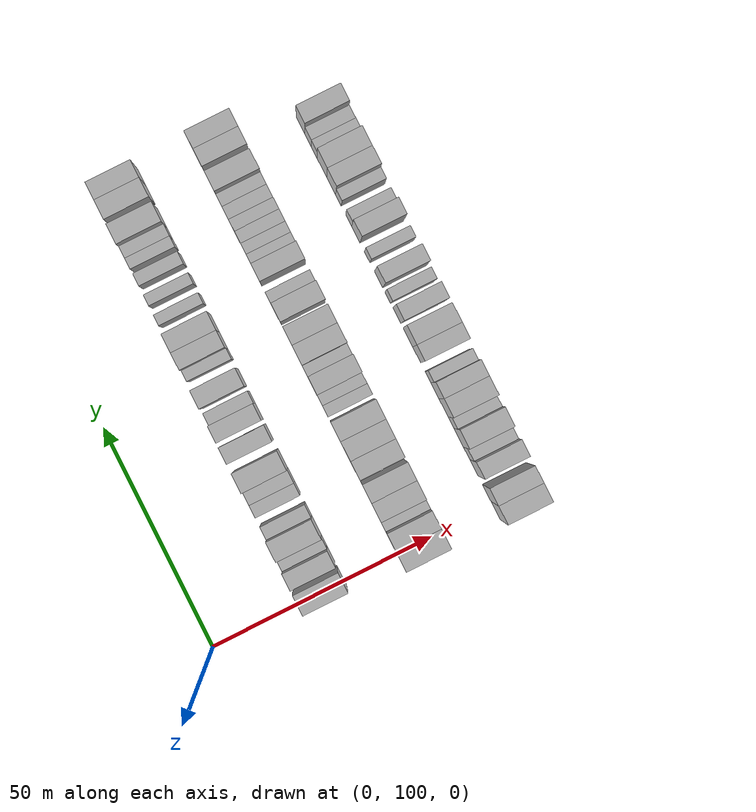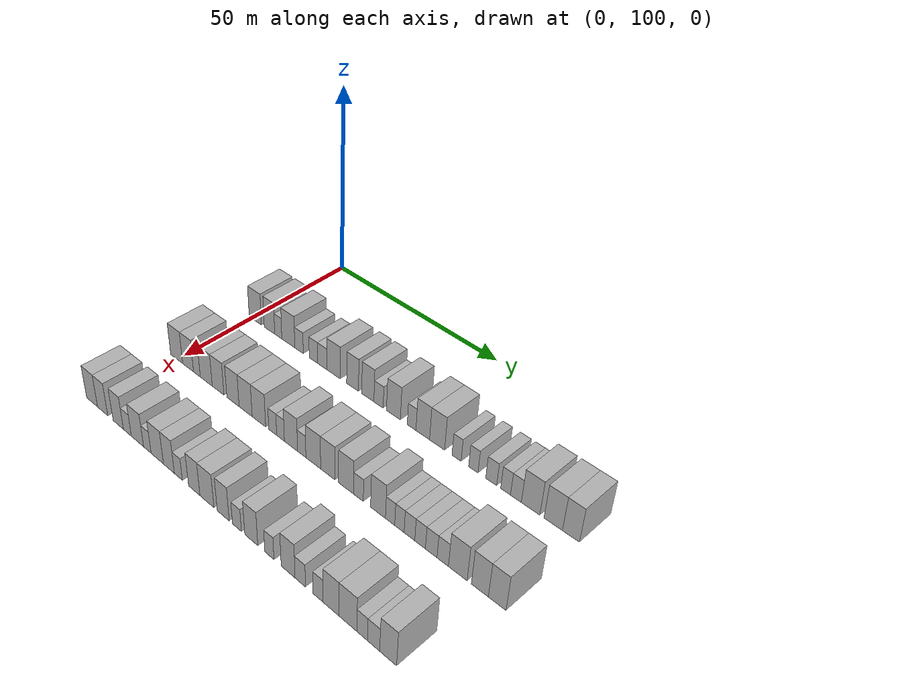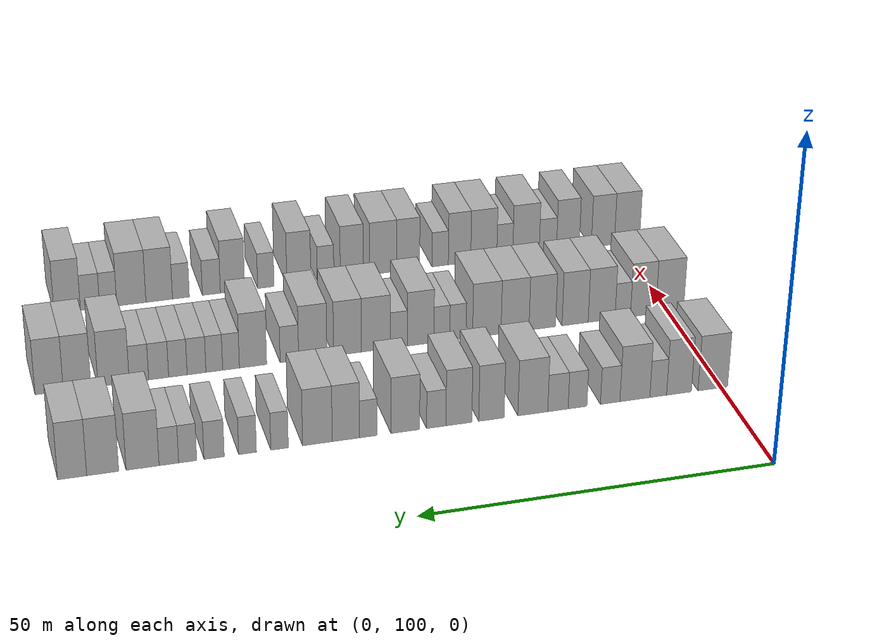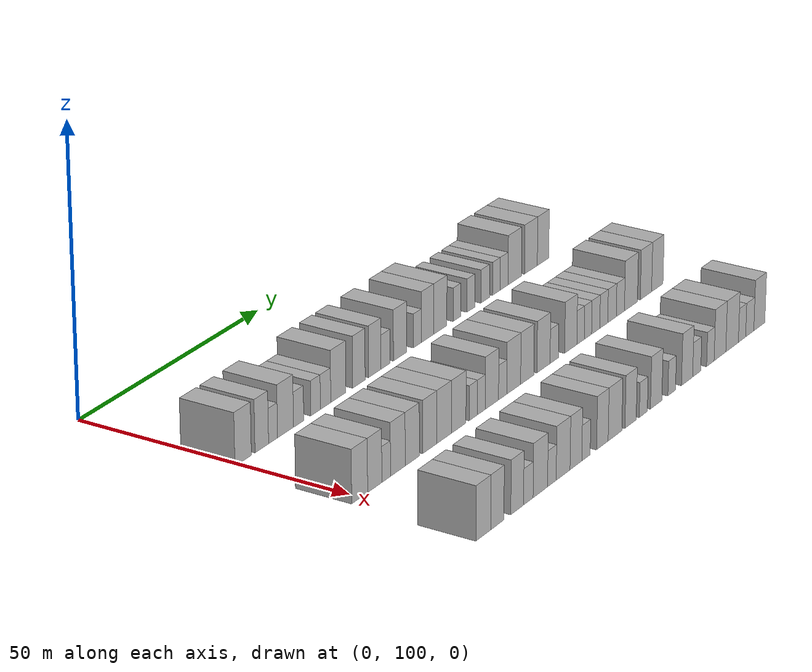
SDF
<sdf version="1.6">
 <world name="default">
  <model name="building_112">
   <static>1</static>
   <pose>25.0000 101.2438 0 0.000000 0.000000 0.000000</pose>
   <link name="link">
    <pose>0 0 4.50 0 0 0</pose>
    <collision name="collision"><geometry><box><size>10.0000 4.4617 9.0000</size></box></geometry></collision>
    <visual name="visual">
     <cast_shadows>0</cast_shadows>
     <geometry><box><size>10.0000 4.4617 9.0000</size></box></geometry>
     <material>
      <script>
       <uri>model://HANNAS_wall/materials/scripts</uri>
       <uri>model://HANNAS_wall/materials/textures</uri>
       <name>vrc/HANNAS_wall</name>
      </script>
     </material>
    </visual>
   </link>
  </model>
  <model name="building_113">
   <static>1</static>
   <pose>25.0000 106.3369 0 0.000000 0.000000 0.000000</pose>
   <link name="link">
    <pose>0 0 4.50 0 0 0</pose>
    <collision name="collision"><geometry><box><size>10.0000 3.7246 9.0000</size></box></geometry></collision>
    <visual name="visual">
     <cast_shadows>0</cast_shadows>
     <geometry><box><size>10.0000 3.7246 9.0000</size></box></geometry>
     <material>
      <script>
       <uri>model://HANNAS_wall/materials/scripts</uri>
       <uri>model://HANNAS_wall/materials/textures</uri>
       <name>vrc/HANNAS_wall</name>
      </script>
     </material>
    </visual>
   </link>
  </model>
  <model name="building_114">
   <static>1</static>
   <pose>25.0000 109.4494 0 0.000000 0.000000 0.000000</pose>
   <link name="link">
    <pose>0 0 3.00 0 0 0</pose>
    <collision name="collision"><geometry><box><size>10.0000 2.5003 6.0000</size></box></geometry></collision>
    <visual name="visual">
     <cast_shadows>0</cast_shadows>
     <geometry><box><size>10.0000 2.5003 6.0000</size></box></geometry>
     <material>
      <script>
       <uri>model://HANNAS_wall/materials/scripts</uri>
       <uri>model://HANNAS_wall/materials/textures</uri>
       <name>vrc/HANNAS_wall</name>
      </script>
     </material>
    </visual>
   </link>
  </model>
  <model name="building_115">
   <static>1</static>
   <pose>25.0000 112.9285 0 0.000000 0.000000 0.000000</pose>
   <link name="link">
    <pose>0 0 4.50 0 0 0</pose>
    <collision name="collision"><geometry><box><size>10.0000 4.4580 9.0000</size></box></geometry></collision>
    <visual name="visual">
     <cast_shadows>0</cast_shadows>
     <geometry><box><size>10.0000 4.4580 9.0000</size></box></geometry>
     <material>
      <script>
       <uri>model://HANNAS_wall/materials/scripts</uri>
       <uri>model://HANNAS_wall/materials/textures</uri>
       <name>vrc/HANNAS_wall</name>
      </script>
     </material>
    </visual>
   </link>
  </model>
  <model name="building_116">
   <static>1</static>
   <pose>25.0000 116.6001 0 0.000000 0.000000 0.000000</pose>
   <link name="link">
    <pose>0 0 3.00 0 0 0</pose>
    <collision name="collision"><geometry><box><size>10.0000 2.8852 6.0000</size></box></geometry></collision>
    <visual name="visual">
     <cast_shadows>0</cast_shadows>
     <geometry><box><size>10.0000 2.8852 6.0000</size></box></geometry>
     <material>
      <script>
       <uri>model://HANNAS_wall/materials/scripts</uri>
       <uri>model://HANNAS_wall/materials/textures</uri>
       <name>vrc/HANNAS_wall</name>
      </script>
     </material>
    </visual>
   </link>
  </model>
  <model name="building_117">
   <static>1</static>
   <pose>25.0000 121.4261 0 0.000000 0.000000 0.000000</pose>
   <link name="link">
    <pose>0 0 3.00 0 0 0</pose>
    <collision name="collision"><geometry><box><size>10.0000 2.7669 6.0000</size></box></geometry></collision>
    <visual name="visual">
     <cast_shadows>0</cast_shadows>
     <geometry><box><size>10.0000 2.7669 6.0000</size></box></geometry>
     <material>
      <script>
       <uri>model://HANNAS_wall/materials/scripts</uri>
       <uri>model://HANNAS_wall/materials/textures</uri>
       <name>vrc/HANNAS_wall</name>
      </script>
     </material>
    </visual>
   </link>
  </model>
  <model name="building_118">
   <static>1</static>
   <pose>25.0000 124.3057 0 0.000000 0.000000 0.000000</pose>
   <link name="link">
    <pose>0 0 3.00 0 0 0</pose>
    <collision name="collision"><geometry><box><size>10.0000 2.9923 6.0000</size></box></geometry></collision>
    <visual name="visual">
     <cast_shadows>0</cast_shadows>
     <geometry><box><size>10.0000 2.9923 6.0000</size></box></geometry>
     <material>
      <script>
       <uri>model://HANNAS_wall/materials/scripts</uri>
       <uri>model://HANNAS_wall/materials/textures</uri>
       <name>vrc/HANNAS_wall</name>
      </script>
     </material>
    </visual>
   </link>
  </model>
  <model name="building_119">
   <static>1</static>
   <pose>25.0000 127.9887 0 0.000000 0.000000 0.000000</pose>
   <link name="link">
    <pose>0 0 4.50 0 0 0</pose>
    <collision name="collision"><geometry><box><size>10.0000 4.3738 9.0000</size></box></geometry></collision>
    <visual name="visual">
     <cast_shadows>0</cast_shadows>
     <geometry><box><size>10.0000 4.3738 9.0000</size></box></geometry>
     <material>
      <script>
       <uri>model://HANNAS_wall/materials/scripts</uri>
       <uri>model://HANNAS_wall/materials/textures</uri>
       <name>vrc/HANNAS_wall</name>
      </script>
     </material>
    </visual>
   </link>
  </model>
  <model name="building_120">
   <static>1</static>
   <pose>25.0000 134.0198 0 0.000000 0.000000 0.000000</pose>
   <link name="link">
    <pose>0 0 4.50 0 0 0</pose>
    <collision name="collision"><geometry><box><size>10.0000 3.6884 9.0000</size></box></geometry></collision>
    <visual name="visual">
     <cast_shadows>0</cast_shadows>
     <geometry><box><size>10.0000 3.6884 9.0000</size></box></geometry>
     <material>
      <script>
       <uri>model://HANNAS_wall/materials/scripts</uri>
       <uri>model://HANNAS_wall/materials/textures</uri>
       <name>vrc/HANNAS_wall</name>
      </script>
     </material>
    </visual>
   </link>
  </model>
  <model name="building_121">
   <static>1</static>
   <pose>25.0000 138.7306 0 0.000000 0.000000 0.000000</pose>
   <link name="link">
    <pose>0 0 4.50 0 0 0</pose>
    <collision name="collision"><geometry><box><size>10.0000 3.7332 9.0000</size></box></geometry></collision>
    <visual name="visual">
     <cast_shadows>0</cast_shadows>
     <geometry><box><size>10.0000 3.7332 9.0000</size></box></geometry>
     <material>
      <script>
       <uri>model://HANNAS_wall/materials/scripts</uri>
       <uri>model://HANNAS_wall/materials/textures</uri>
       <name>vrc/HANNAS_wall</name>
      </script>
     </material>
    </visual>
   </link>
  </model>
  <model name="building_122">
   <static>1</static>
   <pose>25.0000 141.9809 0 0.000000 0.000000 0.000000</pose>
   <link name="link">
    <pose>0 0 3.00 0 0 0</pose>
    <collision name="collision"><geometry><box><size>10.0000 2.7674 6.0000</size></box></geometry></collision>
    <visual name="visual">
     <cast_shadows>0</cast_shadows>
     <geometry><box><size>10.0000 2.7674 6.0000</size></box></geometry>
     <material>
      <script>
       <uri>model://HANNAS_wall/materials/scripts</uri>
       <uri>model://HANNAS_wall/materials/textures</uri>
       <name>vrc/HANNAS_wall</name>
      </script>
     </material>
    </visual>
   </link>
  </model>
  <model name="building_123">
   <static>1</static>
   <pose>25.0000 146.4048 0 0.000000 0.000000 0.000000</pose>
   <link name="link">
    <pose>0 0 4.50 0 0 0</pose>
    <collision name="collision"><geometry><box><size>10.0000 4.0803 9.0000</size></box></geometry></collision>
    <visual name="visual">
     <cast_shadows>0</cast_shadows>
     <geometry><box><size>10.0000 4.0803 9.0000</size></box></geometry>
     <material>
      <script>
       <uri>model://HANNAS_wall/materials/scripts</uri>
       <uri>model://HANNAS_wall/materials/textures</uri>
       <name>vrc/HANNAS_wall</name>
      </script>
     </material>
    </visual>
   </link>
  </model>
  <model name="building_124">
   <static>1</static>
   <pose>25.0000 151.6809 0 0.000000 0.000000 0.000000</pose>
   <link name="link">
    <pose>0 0 3.00 0 0 0</pose>
    <collision name="collision"><geometry><box><size>10.0000 2.4719 6.0000</size></box></geometry></collision>
    <visual name="visual">
     <cast_shadows>0</cast_shadows>
     <geometry><box><size>10.0000 2.4719 6.0000</size></box></geometry>
     <material>
      <script>
       <uri>model://HANNAS_wall/materials/scripts</uri>
       <uri>model://HANNAS_wall/materials/textures</uri>
       <name>vrc/HANNAS_wall</name>
      </script>
     </material>
    </visual>
   </link>
  </model>
  <model name="building_125">
   <static>1</static>
   <pose>25.0000 154.8383 0 0.000000 0.000000 0.000000</pose>
   <link name="link">
    <pose>0 0 4.50 0 0 0</pose>
    <collision name="collision"><geometry><box><size>10.0000 3.8428 9.0000</size></box></geometry></collision>
    <visual name="visual">
     <cast_shadows>0</cast_shadows>
     <geometry><box><size>10.0000 3.8428 9.0000</size></box></geometry>
     <material>
      <script>
       <uri>model://HANNAS_wall/materials/scripts</uri>
       <uri>model://HANNAS_wall/materials/textures</uri>
       <name>vrc/HANNAS_wall</name>
      </script>
     </material>
    </visual>
   </link>
  </model>
  <model name="building_126">
   <static>1</static>
   <pose>25.0000 158.8395 0 0.000000 0.000000 0.000000</pose>
   <link name="link">
    <pose>0 0 4.50 0 0 0</pose>
    <collision name="collision"><geometry><box><size>10.0000 4.1596 9.0000</size></box></geometry></collision>
    <visual name="visual">
     <cast_shadows>0</cast_shadows>
     <geometry><box><size>10.0000 4.1596 9.0000</size></box></geometry>
     <material>
      <script>
       <uri>model://HANNAS_wall/materials/scripts</uri>
       <uri>model://HANNAS_wall/materials/textures</uri>
       <name>vrc/HANNAS_wall</name>
      </script>
     </material>
    </visual>
   </link>
  </model>
  <model name="building_127">
   <static>1</static>
   <pose>25.0000 164.1392 0 0.000000 0.000000 0.000000</pose>
   <link name="link">
    <pose>0 0 3.00 0 0 0</pose>
    <collision name="collision"><geometry><box><size>10.0000 2.4399 6.0000</size></box></geometry></collision>
    <visual name="visual">
     <cast_shadows>0</cast_shadows>
     <geometry><box><size>10.0000 2.4399 6.0000</size></box></geometry>
     <material>
      <script>
       <uri>model://HANNAS_wall/materials/scripts</uri>
       <uri>model://HANNAS_wall/materials/textures</uri>
       <name>vrc/HANNAS_wall</name>
      </script>
     </material>
    </visual>
   </link>
  </model>
  <model name="building_128">
   <static>1</static>
   <pose>25.0000 168.5877 0 0.000000 0.000000 0.000000</pose>
   <link name="link">
    <pose>0 0 3.00 0 0 0</pose>
    <collision name="collision"><geometry><box><size>10.0000 2.4570 6.0000</size></box></geometry></collision>
    <visual name="visual">
     <cast_shadows>0</cast_shadows>
     <geometry><box><size>10.0000 2.4570 6.0000</size></box></geometry>
     <material>
      <script>
       <uri>model://HANNAS_wall/materials/scripts</uri>
       <uri>model://HANNAS_wall/materials/textures</uri>
       <name>vrc/HANNAS_wall</name>
      </script>
     </material>
    </visual>
   </link>
  </model>
  <model name="building_129">
   <static>1</static>
   <pose>25.0000 173.2127 0 0.000000 0.000000 0.000000</pose>
   <link name="link">
    <pose>0 0 3.00 0 0 0</pose>
    <collision name="collision"><geometry><box><size>10.0000 2.7931 6.0000</size></box></geometry></collision>
    <visual name="visual">
     <cast_shadows>0</cast_shadows>
     <geometry><box><size>10.0000 2.7931 6.0000</size></box></geometry>
     <material>
      <script>
       <uri>model://HANNAS_wall/materials/scripts</uri>
       <uri>model://HANNAS_wall/materials/textures</uri>
       <name>vrc/HANNAS_wall</name>
      </script>
     </material>
    </visual>
   </link>
  </model>
  <model name="building_130">
   <static>1</static>
   <pose>25.0000 176.8477 0 0.000000 0.000000 0.000000</pose>
   <link name="link">
    <pose>0 0 3.00 0 0 0</pose>
    <collision name="collision"><geometry><box><size>10.0000 2.4770 6.0000</size></box></geometry></collision>
    <visual name="visual">
     <cast_shadows>0</cast_shadows>
     <geometry><box><size>10.0000 2.4770 6.0000</size></box></geometry>
     <material>
      <script>
       <uri>model://HANNAS_wall/materials/scripts</uri>
       <uri>model://HANNAS_wall/materials/textures</uri>
       <name>vrc/HANNAS_wall</name>
      </script>
     </material>
    </visual>
   </link>
  </model>
  <model name="building_131">
   <static>1</static>
   <pose>25.0000 179.4247 0 0.000000 0.000000 0.000000</pose>
   <link name="link">
    <pose>0 0 3.00 0 0 0</pose>
    <collision name="collision"><geometry><box><size>10.0000 2.6770 6.0000</size></box></geometry></collision>
    <visual name="visual">
     <cast_shadows>0</cast_shadows>
     <geometry><box><size>10.0000 2.6770 6.0000</size></box></geometry>
     <material>
      <script>
       <uri>model://HANNAS_wall/materials/scripts</uri>
       <uri>model://HANNAS_wall/materials/textures</uri>
       <name>vrc/HANNAS_wall</name>
      </script>
     </material>
    </visual>
   </link>
  </model>
  <model name="building_132">
   <static>1</static>
   <pose>25.0000 183.0065 0 0.000000 0.000000 0.000000</pose>
   <link name="link">
    <pose>0 0 4.50 0 0 0</pose>
    <collision name="collision"><geometry><box><size>10.0000 4.4866 9.0000</size></box></geometry></collision>
    <visual name="visual">
     <cast_shadows>0</cast_shadows>
     <geometry><box><size>10.0000 4.4866 9.0000</size></box></geometry>
     <material>
      <script>
       <uri>model://HANNAS_wall/materials/scripts</uri>
       <uri>model://HANNAS_wall/materials/textures</uri>
       <name>vrc/HANNAS_wall</name>
      </script>
     </material>
    </visual>
   </link>
  </model>
  <model name="building_133">
   <static>1</static>
   <pose>25.0000 188.4119 0 0.000000 0.000000 0.000000</pose>
   <link name="link">
    <pose>0 0 4.50 0 0 0</pose>
    <collision name="collision"><geometry><box><size>10.0000 4.3243 9.0000</size></box></geometry></collision>
    <visual name="visual">
     <cast_shadows>0</cast_shadows>
     <geometry><box><size>10.0000 4.3243 9.0000</size></box></geometry>
     <material>
      <script>
       <uri>model://HANNAS_wall/materials/scripts</uri>
       <uri>model://HANNAS_wall/materials/textures</uri>
       <name>vrc/HANNAS_wall</name>
      </script>
     </material>
    </visual>
   </link>
  </model>
  <model name="building_134">
   <static>1</static>
   <pose>25.0000 192.5333 0 0.000000 0.000000 0.000000</pose>
   <link name="link">
    <pose>0 0 4.50 0 0 0</pose>
    <collision name="collision"><geometry><box><size>10.0000 3.9184 9.0000</size></box></geometry></collision>
    <visual name="visual">
     <cast_shadows>0</cast_shadows>
     <geometry><box><size>10.0000 3.9184 9.0000</size></box></geometry>
     <material>
      <script>
       <uri>model://HANNAS_wall/materials/scripts</uri>
       <uri>model://HANNAS_wall/materials/textures</uri>
       <name>vrc/HANNAS_wall</name>
      </script>
     </material>
    </visual>
   </link>
  </model>
  <model name="building_303">
   <static>1</static>
   <pose>47.0000 99.7178 0 0.000000 0.000000 0.000000</pose>
   <link name="link">
    <pose>0 0 4.50 0 0 0</pose>
    <collision name="collision"><geometry><box><size>10.0000 4.4274 9.0000</size></box></geometry></collision>
    <visual name="visual">
     <cast_shadows>0</cast_shadows>
     <geometry><box><size>10.0000 4.4274 9.0000</size></box></geometry>
     <material>
      <script>
       <uri>model://HANNAS_wall/materials/scripts</uri>
       <uri>model://HANNAS_wall/materials/textures</uri>
       <name>vrc/HANNAS_wall</name>
      </script>
     </material>
    </visual>
   </link>
  </model>
  <model name="building_304">
   <static>1</static>
   <pose>47.0000 103.9268 0 0.000000 0.000000 0.000000</pose>
   <link name="link">
    <pose>0 0 4.50 0 0 0</pose>
    <collision name="collision"><geometry><box><size>10.0000 3.9906 9.0000</size></box></geometry></collision>
    <visual name="visual">
     <cast_shadows>0</cast_shadows>
     <geometry><box><size>10.0000 3.9906 9.0000</size></box></geometry>
     <material>
      <script>
       <uri>model://HANNAS_wall/materials/scripts</uri>
       <uri>model://HANNAS_wall/materials/textures</uri>
       <name>vrc/HANNAS_wall</name>
      </script>
     </material>
    </visual>
   </link>
  </model>
  <model name="building_305">
   <static>1</static>
   <pose>47.0000 107.1404 0 0.000000 0.000000 0.000000</pose>
   <link name="link">
    <pose>0 0 3.00 0 0 0</pose>
    <collision name="collision"><geometry><box><size>10.0000 2.4367 6.0000</size></box></geometry></collision>
    <visual name="visual">
     <cast_shadows>0</cast_shadows>
     <geometry><box><size>10.0000 2.4367 6.0000</size></box></geometry>
     <material>
      <script>
       <uri>model://HANNAS_wall/materials/scripts</uri>
       <uri>model://HANNAS_wall/materials/textures</uri>
       <name>vrc/HANNAS_wall</name>
      </script>
     </material>
    </visual>
   </link>
  </model>
  <model name="building_306">
   <static>1</static>
   <pose>47.0000 110.4635 0 0.000000 0.000000 0.000000</pose>
   <link name="link">
    <pose>0 0 4.50 0 0 0</pose>
    <collision name="collision"><geometry><box><size>10.0000 4.2095 9.0000</size></box></geometry></collision>
    <visual name="visual">
     <cast_shadows>0</cast_shadows>
     <geometry><box><size>10.0000 4.2095 9.0000</size></box></geometry>
     <material>
      <script>
       <uri>model://HANNAS_wall/materials/scripts</uri>
       <uri>model://HANNAS_wall/materials/textures</uri>
       <name>vrc/HANNAS_wall</name>
      </script>
     </material>
    </visual>
   </link>
  </model>
  <model name="building_307">
   <static>1</static>
   <pose>47.0000 114.6072 0 0.000000 0.000000 0.000000</pose>
   <link name="link">
    <pose>0 0 4.50 0 0 0</pose>
    <collision name="collision"><geometry><box><size>10.0000 4.0779 9.0000</size></box></geometry></collision>
    <visual name="visual">
     <cast_shadows>0</cast_shadows>
     <geometry><box><size>10.0000 4.0779 9.0000</size></box></geometry>
     <material>
      <script>
       <uri>model://HANNAS_wall/materials/scripts</uri>
       <uri>model://HANNAS_wall/materials/textures</uri>
       <name>vrc/HANNAS_wall</name>
      </script>
     </material>
    </visual>
   </link>
  </model>
  <model name="building_308">
   <static>1</static>
   <pose>47.0000 119.7121 0 0.000000 0.000000 0.000000</pose>
   <link name="link">
    <pose>0 0 4.50 0 0 0</pose>
    <collision name="collision"><geometry><box><size>10.0000 4.1320 9.0000</size></box></geometry></collision>
    <visual name="visual">
     <cast_shadows>0</cast_shadows>
     <geometry><box><size>10.0000 4.1320 9.0000</size></box></geometry>
     <material>
      <script>
       <uri>model://HANNAS_wall/materials/scripts</uri>
       <uri>model://HANNAS_wall/materials/textures</uri>
       <name>vrc/HANNAS_wall</name>
      </script>
     </material>
    </visual>
   </link>
  </model>
  <model name="building_309">
   <static>1</static>
   <pose>47.0000 123.9335 0 0.000000 0.000000 0.000000</pose>
   <link name="link">
    <pose>0 0 4.50 0 0 0</pose>
    <collision name="collision"><geometry><box><size>10.0000 4.3109 9.0000</size></box></geometry></collision>
    <visual name="visual">
     <cast_shadows>0</cast_shadows>
     <geometry><box><size>10.0000 4.3109 9.0000</size></box></geometry>
     <material>
      <script>
       <uri>model://HANNAS_wall/materials/scripts</uri>
       <uri>model://HANNAS_wall/materials/textures</uri>
       <name>vrc/HANNAS_wall</name>
      </script>
     </material>
    </visual>
   </link>
  </model>
  <model name="building_310">
   <static>1</static>
   <pose>47.0000 128.2726 0 0.000000 0.000000 0.000000</pose>
   <link name="link">
    <pose>0 0 4.50 0 0 0</pose>
    <collision name="collision"><geometry><box><size>10.0000 4.3672 9.0000</size></box></geometry></collision>
    <visual name="visual">
     <cast_shadows>0</cast_shadows>
     <geometry><box><size>10.0000 4.3672 9.0000</size></box></geometry>
     <material>
      <script>
       <uri>model://HANNAS_wall/materials/scripts</uri>
       <uri>model://HANNAS_wall/materials/textures</uri>
       <name>vrc/HANNAS_wall</name>
      </script>
     </material>
    </visual>
   </link>
  </model>
  <model name="building_311">
   <static>1</static>
   <pose>47.0000 132.7014 0 0.000000 0.000000 0.000000</pose>
   <link name="link">
    <pose>0 0 3.00 0 0 0</pose>
    <collision name="collision"><geometry><box><size>10.0000 2.4905 6.0000</size></box></geometry></collision>
    <visual name="visual">
     <cast_shadows>0</cast_shadows>
     <geometry><box><size>10.0000 2.4905 6.0000</size></box></geometry>
     <material>
      <script>
       <uri>model://HANNAS_wall/materials/scripts</uri>
       <uri>model://HANNAS_wall/materials/textures</uri>
       <name>vrc/HANNAS_wall</name>
      </script>
     </material>
    </visual>
   </link>
  </model>
  <model name="building_312">
   <static>1</static>
   <pose>47.0000 135.1546 0 0.000000 0.000000 0.000000</pose>
   <link name="link">
    <pose>0 0 3.00 0 0 0</pose>
    <collision name="collision"><geometry><box><size>10.0000 2.4159 6.0000</size></box></geometry></collision>
    <visual name="visual">
     <cast_shadows>0</cast_shadows>
     <geometry><box><size>10.0000 2.4159 6.0000</size></box></geometry>
     <material>
      <script>
       <uri>model://HANNAS_wall/materials/scripts</uri>
       <uri>model://HANNAS_wall/materials/textures</uri>
       <name>vrc/HANNAS_wall</name>
      </script>
     </material>
    </visual>
   </link>
  </model>
  <model name="building_313">
   <static>1</static>
   <pose>47.0000 138.3817 0 0.000000 0.000000 0.000000</pose>
   <link name="link">
    <pose>0 0 4.50 0 0 0</pose>
    <collision name="collision"><geometry><box><size>10.0000 4.0382 9.0000</size></box></geometry></collision>
    <visual name="visual">
     <cast_shadows>0</cast_shadows>
     <geometry><box><size>10.0000 4.0382 9.0000</size></box></geometry>
     <material>
      <script>
       <uri>model://HANNAS_wall/materials/scripts</uri>
       <uri>model://HANNAS_wall/materials/textures</uri>
       <name>vrc/HANNAS_wall</name>
      </script>
     </material>
    </visual>
   </link>
  </model>
  <model name="building_314">
   <static>1</static>
   <pose>47.0000 141.6623 0 0.000000 0.000000 0.000000</pose>
   <link name="link">
    <pose>0 0 3.00 0 0 0</pose>
    <collision name="collision"><geometry><box><size>10.0000 2.5231 6.0000</size></box></geometry></collision>
    <visual name="visual">
     <cast_shadows>0</cast_shadows>
     <geometry><box><size>10.0000 2.5231 6.0000</size></box></geometry>
     <material>
      <script>
       <uri>model://HANNAS_wall/materials/scripts</uri>
       <uri>model://HANNAS_wall/materials/textures</uri>
       <name>vrc/HANNAS_wall</name>
      </script>
     </material>
    </visual>
   </link>
  </model>
  <model name="building_315">
   <static>1</static>
   <pose>47.0000 145.1107 0 0.000000 0.000000 0.000000</pose>
   <link name="link">
    <pose>0 0 4.50 0 0 0</pose>
    <collision name="collision"><geometry><box><size>10.0000 4.3736 9.0000</size></box></geometry></collision>
    <visual name="visual">
     <cast_shadows>0</cast_shadows>
     <geometry><box><size>10.0000 4.3736 9.0000</size></box></geometry>
     <material>
      <script>
       <uri>model://HANNAS_wall/materials/scripts</uri>
       <uri>model://HANNAS_wall/materials/textures</uri>
       <name>vrc/HANNAS_wall</name>
      </script>
     </material>
    </visual>
   </link>
  </model>
  <model name="building_316">
   <static>1</static>
   <pose>47.0000 149.3808 0 0.000000 0.000000 0.000000</pose>
   <link name="link">
    <pose>0 0 4.50 0 0 0</pose>
    <collision name="collision"><geometry><box><size>10.0000 4.1667 9.0000</size></box></geometry></collision>
    <visual name="visual">
     <cast_shadows>0</cast_shadows>
     <geometry><box><size>10.0000 4.1667 9.0000</size></box></geometry>
     <material>
      <script>
       <uri>model://HANNAS_wall/materials/scripts</uri>
       <uri>model://HANNAS_wall/materials/textures</uri>
       <name>vrc/HANNAS_wall</name>
      </script>
     </material>
    </visual>
   </link>
  </model>
  <model name="building_317">
   <static>1</static>
   <pose>47.0000 154.5655 0 0.000000 0.000000 0.000000</pose>
   <link name="link">
    <pose>0 0 4.50 0 0 0</pose>
    <collision name="collision"><geometry><box><size>10.0000 4.2026 9.0000</size></box></geometry></collision>
    <visual name="visual">
     <cast_shadows>0</cast_shadows>
     <geometry><box><size>10.0000 4.2026 9.0000</size></box></geometry>
     <material>
      <script>
       <uri>model://HANNAS_wall/materials/scripts</uri>
       <uri>model://HANNAS_wall/materials/textures</uri>
       <name>vrc/HANNAS_wall</name>
      </script>
     </material>
    </visual>
   </link>
  </model>
  <model name="building_318">
   <static>1</static>
   <pose>47.0000 158.0343 0 0.000000 0.000000 0.000000</pose>
   <link name="link">
    <pose>0 0 3.00 0 0 0</pose>
    <collision name="collision"><geometry><box><size>10.0000 2.7350 6.0000</size></box></geometry></collision>
    <visual name="visual">
     <cast_shadows>0</cast_shadows>
     <geometry><box><size>10.0000 2.7350 6.0000</size></box></geometry>
     <material>
      <script>
       <uri>model://HANNAS_wall/materials/scripts</uri>
       <uri>model://HANNAS_wall/materials/textures</uri>
       <name>vrc/HANNAS_wall</name>
      </script>
     </material>
    </visual>
   </link>
  </model>
  <model name="building_319">
   <static>1</static>
   <pose>47.0000 163.4018 0 0.000000 0.000000 0.000000</pose>
   <link name="link">
    <pose>0 0 4.50 0 0 0</pose>
    <collision name="collision"><geometry><box><size>10.0000 4.0001 9.0000</size></box></geometry></collision>
    <visual name="visual">
     <cast_shadows>0</cast_shadows>
     <geometry><box><size>10.0000 4.0001 9.0000</size></box></geometry>
     <material>
      <script>
       <uri>model://HANNAS_wall/materials/scripts</uri>
       <uri>model://HANNAS_wall/materials/textures</uri>
       <name>vrc/HANNAS_wall</name>
      </script>
     </material>
    </visual>
   </link>
  </model>
  <model name="building_320">
   <static>1</static>
   <pose>47.0000 166.6276 0 0.000000 0.000000 0.000000</pose>
   <link name="link">
    <pose>0 0 3.00 0 0 0</pose>
    <collision name="collision"><geometry><box><size>10.0000 2.4515 6.0000</size></box></geometry></collision>
    <visual name="visual">
     <cast_shadows>0</cast_shadows>
     <geometry><box><size>10.0000 2.4515 6.0000</size></box></geometry>
     <material>
      <script>
       <uri>model://HANNAS_wall/materials/scripts</uri>
       <uri>model://HANNAS_wall/materials/textures</uri>
       <name>vrc/HANNAS_wall</name>
      </script>
     </material>
    </visual>
   </link>
  </model>
  <model name="building_321">
   <static>1</static>
   <pose>47.0000 169.0742 0 0.000000 0.000000 0.000000</pose>
   <link name="link">
    <pose>0 0 3.00 0 0 0</pose>
    <collision name="collision"><geometry><box><size>10.0000 2.4417 6.0000</size></box></geometry></collision>
    <visual name="visual">
     <cast_shadows>0</cast_shadows>
     <geometry><box><size>10.0000 2.4417 6.0000</size></box></geometry>
     <material>
      <script>
       <uri>model://HANNAS_wall/materials/scripts</uri>
       <uri>model://HANNAS_wall/materials/textures</uri>
       <name>vrc/HANNAS_wall</name>
      </script>
     </material>
    </visual>
   </link>
  </model>
  <model name="building_322">
   <static>1</static>
   <pose>47.0000 171.6679 0 0.000000 0.000000 0.000000</pose>
   <link name="link">
    <pose>0 0 3.00 0 0 0</pose>
    <collision name="collision"><geometry><box><size>10.0000 2.7456 6.0000</size></box></geometry></collision>
    <visual name="visual">
     <cast_shadows>0</cast_shadows>
     <geometry><box><size>10.0000 2.7456 6.0000</size></box></geometry>
     <material>
      <script>
       <uri>model://HANNAS_wall/materials/scripts</uri>
       <uri>model://HANNAS_wall/materials/textures</uri>
       <name>vrc/HANNAS_wall</name>
      </script>
     </material>
    </visual>
   </link>
  </model>
  <model name="building_323">
   <static>1</static>
   <pose>47.0000 174.3817 0 0.000000 0.000000 0.000000</pose>
   <link name="link">
    <pose>0 0 3.00 0 0 0</pose>
    <collision name="collision"><geometry><box><size>10.0000 2.6820 6.0000</size></box></geometry></collision>
    <visual name="visual">
     <cast_shadows>0</cast_shadows>
     <geometry><box><size>10.0000 2.6820 6.0000</size></box></geometry>
     <material>
      <script>
       <uri>model://HANNAS_wall/materials/scripts</uri>
       <uri>model://HANNAS_wall/materials/textures</uri>
       <name>vrc/HANNAS_wall</name>
      </script>
     </material>
    </visual>
   </link>
  </model>
  <model name="building_324">
   <static>1</static>
   <pose>47.0000 177.1669 0 0.000000 0.000000 0.000000</pose>
   <link name="link">
    <pose>0 0 3.00 0 0 0</pose>
    <collision name="collision"><geometry><box><size>10.0000 2.8884 6.0000</size></box></geometry></collision>
    <visual name="visual">
     <cast_shadows>0</cast_shadows>
     <geometry><box><size>10.0000 2.8884 6.0000</size></box></geometry>
     <material>
      <script>
       <uri>model://HANNAS_wall/materials/scripts</uri>
       <uri>model://HANNAS_wall/materials/textures</uri>
       <name>vrc/HANNAS_wall</name>
      </script>
     </material>
    </visual>
   </link>
  </model>
  <model name="building_325">
   <static>1</static>
   <pose>47.0000 180.0088 0 0.000000 0.000000 0.000000</pose>
   <link name="link">
    <pose>0 0 3.00 0 0 0</pose>
    <collision name="collision"><geometry><box><size>10.0000 2.7954 6.0000</size></box></geometry></collision>
    <visual name="visual">
     <cast_shadows>0</cast_shadows>
     <geometry><box><size>10.0000 2.7954 6.0000</size></box></geometry>
     <material>
      <script>
       <uri>model://HANNAS_wall/materials/scripts</uri>
       <uri>model://HANNAS_wall/materials/textures</uri>
       <name>vrc/HANNAS_wall</name>
      </script>
     </material>
    </visual>
   </link>
  </model>
  <model name="building_326">
   <static>1</static>
   <pose>47.0000 183.6480 0 0.000000 0.000000 0.000000</pose>
   <link name="link">
    <pose>0 0 4.50 0 0 0</pose>
    <collision name="collision"><geometry><box><size>10.0000 4.4830 9.0000</size></box></geometry></collision>
    <visual name="visual">
     <cast_shadows>0</cast_shadows>
     <geometry><box><size>10.0000 4.4830 9.0000</size></box></geometry>
     <material>
      <script>
       <uri>model://HANNAS_wall/materials/scripts</uri>
       <uri>model://HANNAS_wall/materials/textures</uri>
       <name>vrc/HANNAS_wall</name>
      </script>
     </material>
    </visual>
   </link>
  </model>
  <model name="building_327">
   <static>1</static>
   <pose>47.0000 188.8605 0 0.000000 0.000000 0.000000</pose>
   <link name="link">
    <pose>0 0 4.50 0 0 0</pose>
    <collision name="collision"><geometry><box><size>10.0000 3.9422 9.0000</size></box></geometry></collision>
    <visual name="visual">
     <cast_shadows>0</cast_shadows>
     <geometry><box><size>10.0000 3.9422 9.0000</size></box></geometry>
     <material>
      <script>
       <uri>model://HANNAS_wall/materials/scripts</uri>
       <uri>model://HANNAS_wall/materials/textures</uri>
       <name>vrc/HANNAS_wall</name>
      </script>
     </material>
    </visual>
   </link>
  </model>
  <model name="building_328">
   <static>1</static>
   <pose>47.0000 192.8395 0 0.000000 0.000000 0.000000</pose>
   <link name="link">
    <pose>0 0 4.50 0 0 0</pose>
    <collision name="collision"><geometry><box><size>10.0000 4.0157 9.0000</size></box></geometry></collision>
    <visual name="visual">
     <cast_shadows>0</cast_shadows>
     <geometry><box><size>10.0000 4.0157 9.0000</size></box></geometry>
     <material>
      <script>
       <uri>model://HANNAS_wall/materials/scripts</uri>
       <uri>model://HANNAS_wall/materials/textures</uri>
       <name>vrc/HANNAS_wall</name>
      </script>
     </material>
    </visual>
   </link>
  </model>
  <model name="building_495">
   <static>1</static>
   <pose>69.0000 98.8402 0 0.000000 0.000000 0.000000</pose>
   <link name="link">
    <pose>0 0 4.50 0 0 0</pose>
    <collision name="collision"><geometry><box><size>10.0000 4.1887 9.0000</size></box></geometry></collision>
    <visual name="visual">
     <cast_shadows>0</cast_shadows>
     <geometry><box><size>10.0000 4.1887 9.0000</size></box></geometry>
     <material>
      <script>
       <uri>model://HANNAS_wall/materials/scripts</uri>
       <uri>model://HANNAS_wall/materials/textures</uri>
       <name>vrc/HANNAS_wall</name>
      </script>
     </material>
    </visual>
   </link>
  </model>
  <model name="building_496">
   <static>1</static>
   <pose>69.0000 102.8483 0 0.000000 0.000000 0.000000</pose>
   <link name="link">
    <pose>0 0 4.50 0 0 0</pose>
    <collision name="collision"><geometry><box><size>10.0000 3.8277 9.0000</size></box></geometry></collision>
    <visual name="visual">
     <cast_shadows>0</cast_shadows>
     <geometry><box><size>10.0000 3.8277 9.0000</size></box></geometry>
     <material>
      <script>
       <uri>model://HANNAS_wall/materials/scripts</uri>
       <uri>model://HANNAS_wall/materials/textures</uri>
       <name>vrc/HANNAS_wall</name>
      </script>
     </material>
    </visual>
   </link>
  </model>
  <model name="building_497">
   <static>1</static>
   <pose>69.0000 108.6304 0 0.000000 0.000000 0.000000</pose>
   <link name="link">
    <pose>0 0 4.50 0 0 0</pose>
    <collision name="collision"><geometry><box><size>10.0000 3.7366 9.0000</size></box></geometry></collision>
    <visual name="visual">
     <cast_shadows>0</cast_shadows>
     <geometry><box><size>10.0000 3.7366 9.0000</size></box></geometry>
     <material>
      <script>
       <uri>model://HANNAS_wall/materials/scripts</uri>
       <uri>model://HANNAS_wall/materials/textures</uri>
       <name>vrc/HANNAS_wall</name>
      </script>
     </material>
    </visual>
   </link>
  </model>
  <model name="building_498">
   <static>1</static>
   <pose>69.0000 111.9175 0 0.000000 0.000000 0.000000</pose>
   <link name="link">
    <pose>0 0 3.00 0 0 0</pose>
    <collision name="collision"><geometry><box><size>10.0000 2.8376 6.0000</size></box></geometry></collision>
    <visual name="visual">
     <cast_shadows>0</cast_shadows>
     <geometry><box><size>10.0000 2.8376 6.0000</size></box></geometry>
     <material>
      <script>
       <uri>model://HANNAS_wall/materials/scripts</uri>
       <uri>model://HANNAS_wall/materials/textures</uri>
       <name>vrc/HANNAS_wall</name>
      </script>
     </material>
    </visual>
   </link>
  </model>
  <model name="building_499">
   <static>1</static>
   <pose>69.0000 115.4952 0 0.000000 0.000000 0.000000</pose>
   <link name="link">
    <pose>0 0 4.50 0 0 0</pose>
    <collision name="collision"><geometry><box><size>10.0000 4.3177 9.0000</size></box></geometry></collision>
    <visual name="visual">
     <cast_shadows>0</cast_shadows>
     <geometry><box><size>10.0000 4.3177 9.0000</size></box></geometry>
     <material>
      <script>
       <uri>model://HANNAS_wall/materials/scripts</uri>
       <uri>model://HANNAS_wall/materials/textures</uri>
       <name>vrc/HANNAS_wall</name>
      </script>
     </material>
    </visual>
   </link>
  </model>
  <model name="building_500">
   <static>1</static>
   <pose>69.0000 118.9549 0 0.000000 0.000000 0.000000</pose>
   <link name="link">
    <pose>0 0 3.00 0 0 0</pose>
    <collision name="collision"><geometry><box><size>10.0000 2.6017 6.0000</size></box></geometry></collision>
    <visual name="visual">
     <cast_shadows>0</cast_shadows>
     <geometry><box><size>10.0000 2.6017 6.0000</size></box></geometry>
     <material>
      <script>
       <uri>model://HANNAS_wall/materials/scripts</uri>
       <uri>model://HANNAS_wall/materials/textures</uri>
       <name>vrc/HANNAS_wall</name>
      </script>
     </material>
    </visual>
   </link>
  </model>
  <model name="building_501">
   <static>1</static>
   <pose>69.0000 122.3631 0 0.000000 0.000000 0.000000</pose>
   <link name="link">
    <pose>0 0 4.50 0 0 0</pose>
    <collision name="collision"><geometry><box><size>10.0000 4.2146 9.0000</size></box></geometry></collision>
    <visual name="visual">
     <cast_shadows>0</cast_shadows>
     <geometry><box><size>10.0000 4.2146 9.0000</size></box></geometry>
     <material>
      <script>
       <uri>model://HANNAS_wall/materials/scripts</uri>
       <uri>model://HANNAS_wall/materials/textures</uri>
       <name>vrc/HANNAS_wall</name>
      </script>
     </material>
    </visual>
   </link>
  </model>
  <model name="building_502">
   <static>1</static>
   <pose>69.0000 126.2820 0 0.000000 0.000000 0.000000</pose>
   <link name="link">
    <pose>0 0 4.50 0 0 0</pose>
    <collision name="collision"><geometry><box><size>10.0000 3.6233 9.0000</size></box></geometry></collision>
    <visual name="visual">
     <cast_shadows>0</cast_shadows>
     <geometry><box><size>10.0000 3.6233 9.0000</size></box></geometry>
     <material>
      <script>
       <uri>model://HANNAS_wall/materials/scripts</uri>
       <uri>model://HANNAS_wall/materials/textures</uri>
       <name>vrc/HANNAS_wall</name>
      </script>
     </material>
    </visual>
   </link>
  </model>
  <model name="building_503">
   <static>1</static>
   <pose>69.0000 129.3968 0 0.000000 0.000000 0.000000</pose>
   <link name="link">
    <pose>0 0 3.00 0 0 0</pose>
    <collision name="collision"><geometry><box><size>10.0000 2.6063 6.0000</size></box></geometry></collision>
    <visual name="visual">
     <cast_shadows>0</cast_shadows>
     <geometry><box><size>10.0000 2.6063 6.0000</size></box></geometry>
     <material>
      <script>
       <uri>model://HANNAS_wall/materials/scripts</uri>
       <uri>model://HANNAS_wall/materials/textures</uri>
       <name>vrc/HANNAS_wall</name>
      </script>
     </material>
    </visual>
   </link>
  </model>
  <model name="building_504">
   <static>1</static>
   <pose>69.0000 134.5149 0 0.000000 0.000000 0.000000</pose>
   <link name="link">
    <pose>0 0 4.50 0 0 0</pose>
    <collision name="collision"><geometry><box><size>10.0000 3.6299 9.0000</size></box></geometry></collision>
    <visual name="visual">
     <cast_shadows>0</cast_shadows>
     <geometry><box><size>10.0000 3.6299 9.0000</size></box></geometry>
     <material>
      <script>
       <uri>model://HANNAS_wall/materials/scripts</uri>
       <uri>model://HANNAS_wall/materials/textures</uri>
       <name>vrc/HANNAS_wall</name>
      </script>
     </material>
    </visual>
   </link>
  </model>
  <model name="building_505">
   <static>1</static>
   <pose>69.0000 138.5107 0 0.000000 0.000000 0.000000</pose>
   <link name="link">
    <pose>0 0 4.50 0 0 0</pose>
    <collision name="collision"><geometry><box><size>10.0000 4.3619 9.0000</size></box></geometry></collision>
    <visual name="visual">
     <cast_shadows>0</cast_shadows>
     <geometry><box><size>10.0000 4.3619 9.0000</size></box></geometry>
     <material>
      <script>
       <uri>model://HANNAS_wall/materials/scripts</uri>
       <uri>model://HANNAS_wall/materials/textures</uri>
       <name>vrc/HANNAS_wall</name>
      </script>
     </material>
    </visual>
   </link>
  </model>
  <model name="building_506">
   <static>1</static>
   <pose>69.0000 143.5006 0 0.000000 0.000000 0.000000</pose>
   <link name="link">
    <pose>0 0 4.50 0 0 0</pose>
    <collision name="collision"><geometry><box><size>10.0000 3.6178 9.0000</size></box></geometry></collision>
    <visual name="visual">
     <cast_shadows>0</cast_shadows>
     <geometry><box><size>10.0000 3.6178 9.0000</size></box></geometry>
     <material>
      <script>
       <uri>model://HANNAS_wall/materials/scripts</uri>
       <uri>model://HANNAS_wall/materials/textures</uri>
       <name>vrc/HANNAS_wall</name>
      </script>
     </material>
    </visual>
   </link>
  </model>
  <model name="building_507">
   <static>1</static>
   <pose>69.0000 147.6260 0 0.000000 0.000000 0.000000</pose>
   <link name="link">
    <pose>0 0 3.00 0 0 0</pose>
    <collision name="collision"><geometry><box><size>10.0000 2.6331 6.0000</size></box></geometry></collision>
    <visual name="visual">
     <cast_shadows>0</cast_shadows>
     <geometry><box><size>10.0000 2.6331 6.0000</size></box></geometry>
     <material>
      <script>
       <uri>model://HANNAS_wall/materials/scripts</uri>
       <uri>model://HANNAS_wall/materials/textures</uri>
       <name>vrc/HANNAS_wall</name>
      </script>
     </material>
    </visual>
   </link>
  </model>
  <model name="building_508">
   <static>1</static>
   <pose>69.0000 151.8196 0 0.000000 0.000000 0.000000</pose>
   <link name="link">
    <pose>0 0 4.50 0 0 0</pose>
    <collision name="collision"><geometry><box><size>10.0000 3.7542 9.0000</size></box></geometry></collision>
    <visual name="visual">
     <cast_shadows>0</cast_shadows>
     <geometry><box><size>10.0000 3.7542 9.0000</size></box></geometry>
     <material>
      <script>
       <uri>model://HANNAS_wall/materials/scripts</uri>
       <uri>model://HANNAS_wall/materials/textures</uri>
       <name>vrc/HANNAS_wall</name>
      </script>
     </material>
    </visual>
   </link>
  </model>
  <model name="building_509">
   <static>1</static>
   <pose>69.0000 156.9750 0 0.000000 0.000000 0.000000</pose>
   <link name="link">
    <pose>0 0 3.00 0 0 0</pose>
    <collision name="collision"><geometry><box><size>10.0000 2.5565 6.0000</size></box></geometry></collision>
    <visual name="visual">
     <cast_shadows>0</cast_shadows>
     <geometry><box><size>10.0000 2.5565 6.0000</size></box></geometry>
     <material>
      <script>
       <uri>model://HANNAS_wall/materials/scripts</uri>
       <uri>model://HANNAS_wall/materials/textures</uri>
       <name>vrc/HANNAS_wall</name>
      </script>
     </material>
    </visual>
   </link>
  </model>
  <model name="building_510">
   <static>1</static>
   <pose>69.0000 162.1394 0 0.000000 0.000000 0.000000</pose>
   <link name="link">
    <pose>0 0 4.50 0 0 0</pose>
    <collision name="collision"><geometry><box><size>10.0000 3.7724 9.0000</size></box></geometry></collision>
    <visual name="visual">
     <cast_shadows>0</cast_shadows>
     <geometry><box><size>10.0000 3.7724 9.0000</size></box></geometry>
     <material>
      <script>
       <uri>model://HANNAS_wall/materials/scripts</uri>
       <uri>model://HANNAS_wall/materials/textures</uri>
       <name>vrc/HANNAS_wall</name>
      </script>
     </material>
    </visual>
   </link>
  </model>
  <model name="building_511">
   <static>1</static>
   <pose>69.0000 165.4180 0 0.000000 0.000000 0.000000</pose>
   <link name="link">
    <pose>0 0 3.00 0 0 0</pose>
    <collision name="collision"><geometry><box><size>10.0000 2.7849 6.0000</size></box></geometry></collision>
    <visual name="visual">
     <cast_shadows>0</cast_shadows>
     <geometry><box><size>10.0000 2.7849 6.0000</size></box></geometry>
     <material>
      <script>
       <uri>model://HANNAS_wall/materials/scripts</uri>
       <uri>model://HANNAS_wall/materials/textures</uri>
       <name>vrc/HANNAS_wall</name>
      </script>
     </material>
    </visual>
   </link>
  </model>
  <model name="building_512">
   <static>1</static>
   <pose>69.0000 170.1016 0 0.000000 0.000000 0.000000</pose>
   <link name="link">
    <pose>0 0 3.00 0 0 0</pose>
    <collision name="collision"><geometry><box><size>10.0000 2.5824 6.0000</size></box></geometry></collision>
    <visual name="visual">
     <cast_shadows>0</cast_shadows>
     <geometry><box><size>10.0000 2.5824 6.0000</size></box></geometry>
     <material>
      <script>
       <uri>model://HANNAS_wall/materials/scripts</uri>
       <uri>model://HANNAS_wall/materials/textures</uri>
       <name>vrc/HANNAS_wall</name>
      </script>
     </material>
    </visual>
   </link>
  </model>
  <model name="building_513">
   <static>1</static>
   <pose>69.0000 173.4249 0 0.000000 0.000000 0.000000</pose>
   <link name="link">
    <pose>0 0 4.50 0 0 0</pose>
    <collision name="collision"><geometry><box><size>10.0000 4.0641 9.0000</size></box></geometry></collision>
    <visual name="visual">
     <cast_shadows>0</cast_shadows>
     <geometry><box><size>10.0000 4.0641 9.0000</size></box></geometry>
     <material>
      <script>
       <uri>model://HANNAS_wall/materials/scripts</uri>
       <uri>model://HANNAS_wall/materials/textures</uri>
       <name>vrc/HANNAS_wall</name>
      </script>
     </material>
    </visual>
   </link>
  </model>
  <model name="building_514">
   <static>1</static>
   <pose>69.0000 177.6707 0 0.000000 0.000000 0.000000</pose>
   <link name="link">
    <pose>0 0 4.50 0 0 0</pose>
    <collision name="collision"><geometry><box><size>10.0000 4.4274 9.0000</size></box></geometry></collision>
    <visual name="visual">
     <cast_shadows>0</cast_shadows>
     <geometry><box><size>10.0000 4.4274 9.0000</size></box></geometry>
     <material>
      <script>
       <uri>model://HANNAS_wall/materials/scripts</uri>
       <uri>model://HANNAS_wall/materials/textures</uri>
       <name>vrc/HANNAS_wall</name>
      </script>
     </material>
    </visual>
   </link>
  </model>
  <model name="building_515">
   <static>1</static>
   <pose>69.0000 181.1768 0 0.000000 0.000000 0.000000</pose>
   <link name="link">
    <pose>0 0 3.00 0 0 0</pose>
    <collision name="collision"><geometry><box><size>10.0000 2.5847 6.0000</size></box></geometry></collision>
    <visual name="visual">
     <cast_shadows>0</cast_shadows>
     <geometry><box><size>10.0000 2.5847 6.0000</size></box></geometry>
     <material>
      <script>
       <uri>model://HANNAS_wall/materials/scripts</uri>
       <uri>model://HANNAS_wall/materials/textures</uri>
       <name>vrc/HANNAS_wall</name>
      </script>
     </material>
    </visual>
   </link>
  </model>
  <model name="building_516">
   <static>1</static>
   <pose>69.0000 183.9250 0 0.000000 0.000000 0.000000</pose>
   <link name="link">
    <pose>0 0 3.00 0 0 0</pose>
    <collision name="collision"><geometry><box><size>10.0000 2.9118 6.0000</size></box></geometry></collision>
    <visual name="visual">
     <cast_shadows>0</cast_shadows>
     <geometry><box><size>10.0000 2.9118 6.0000</size></box></geometry>
     <material>
      <script>
       <uri>model://HANNAS_wall/materials/scripts</uri>
       <uri>model://HANNAS_wall/materials/textures</uri>
       <name>vrc/HANNAS_wall</name>
      </script>
     </material>
    </visual>
   </link>
  </model>
  <model name="building_517">
   <static>1</static>
   <pose>69.0000 187.3643 0 0.000000 0.000000 0.000000</pose>
   <link name="link">
    <pose>0 0 4.50 0 0 0</pose>
    <collision name="collision"><geometry><box><size>10.0000 3.9668 9.0000</size></box></geometry></collision>
    <visual name="visual">
     <cast_shadows>0</cast_shadows>
     <geometry><box><size>10.0000 3.9668 9.0000</size></box></geometry>
     <material>
      <script>
       <uri>model://HANNAS_wall/materials/scripts</uri>
       <uri>model://HANNAS_wall/materials/textures</uri>
       <name>vrc/HANNAS_wall</name>
      </script>
     </material>
    </visual>
   </link>
  </model>
 </world>
</sdf>
